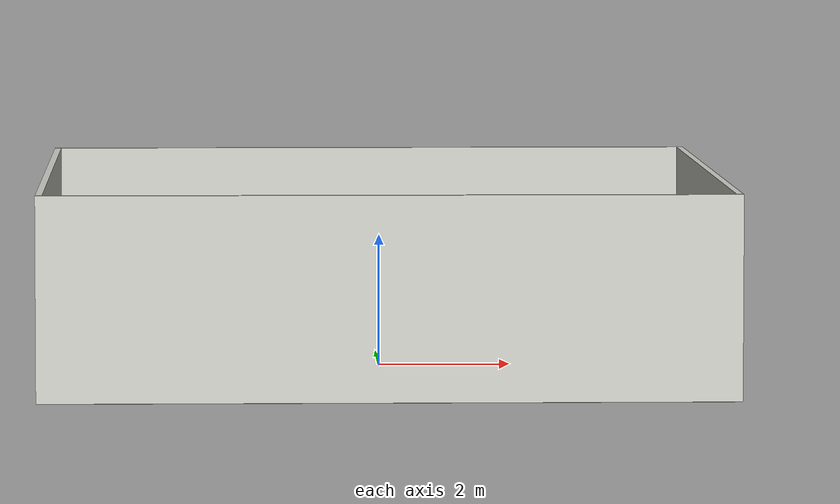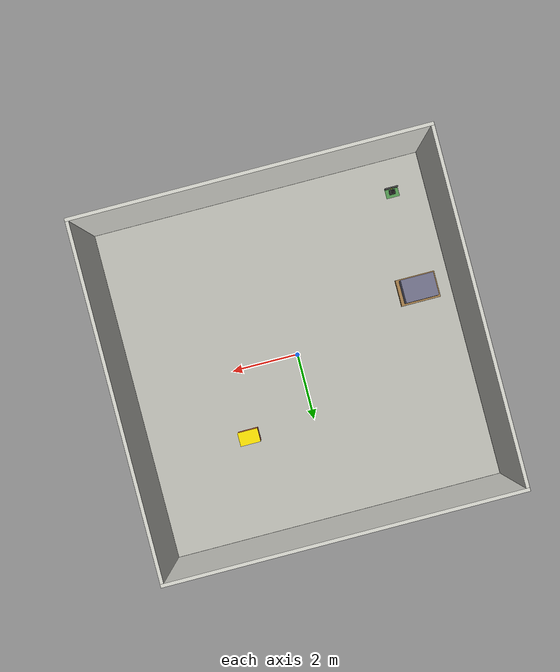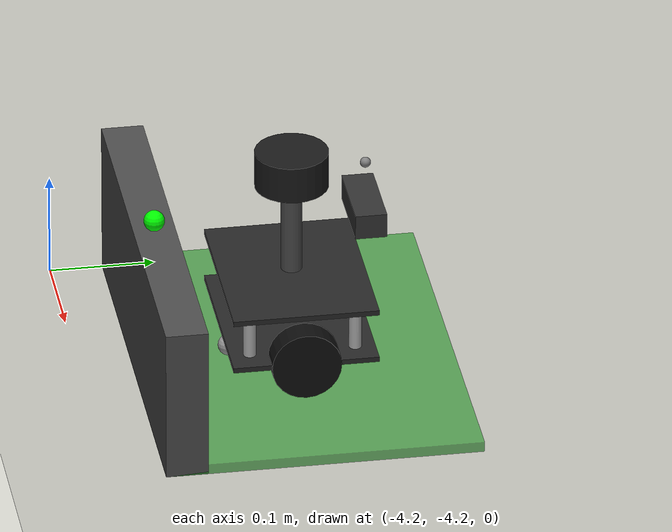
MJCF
<mujoco model="turtlebot_indoor_patrol">
    <compiler angle="degree" coordinate="local" inertiafromgeom="false"/>
    <option integrator="implicitfast" timestep="0.005" gravity="0 0 -9.81"/>

    <default>
        <joint damping="0.01" armature="0.001"/>
        <geom friction="1.0 0.005 0.0001" condim="3" contype="1" conaffinity="1"/>
    </default>

    <worldbody>
        <geom name="floor" type="plane" size="5 5 0.1"
              rgba="0.75 0.75 0.72 1" friction="1.0 0.005 0.0001"/>
        <light directional="true" diffuse=".8 .8 .8" specular=".3 .3 .3"
               pos="0 0 4" dir="0 0 -1"/>
        <!-- 보조 조명 (그림자 완화) -->
        <light directional="false" diffuse=".4 .4 .4" specular=".1 .1 .1"
               pos="3 3 3.5" dir="-0.3 -0.3 -1"/>
        <light directional="false" diffuse=".4 .4 .4" specular=".1 .1 .1"
               pos="-3 -3 3.5" dir="0.3 0.3 -1"/>

        <!-- ================================================================
             2. 실내 벽면 (10m x 10m, 벽 높이 3m, 벽 두께 0.1m)
             ================================================================ -->
        <geom name="wall_north" type="box" size="5.1 0.05 1.5"
              pos="0 5.05 1.5" rgba="0.85 0.85 0.82 1"/>
        <geom name="wall_south" type="box" size="5.1 0.05 1.5"
              pos="0 -5.05 1.5" rgba="0.85 0.85 0.82 1"/>
        <geom name="wall_east" type="box" size="0.05 5.0 1.5"
              pos="5.05 0 1.5" rgba="0.85 0.85 0.82 1"/>
        <geom name="wall_west" type="box" size="0.05 5.0 1.5"
              pos="-5.05 0 1.5" rgba="0.85 0.85 0.82 1"/>

        <body name="charging_station" pos="-4 -4 0">
            <!-- 충전 스테이션 베이스 (바닥 고정) -->
            <geom name="station_base" type="box"
                  size="0.2 0.15 0.005" pos="0 0 0.005"
                  rgba="0.2 0.6 0.2 0.7" mass="5.0"/>
            <!-- 충전 스테이션 본체 (후방 벽) -->
            <geom name="station_body" type="box"
                  size="0.2 0.02 0.075" pos="0 -0.13 0.075"
                  rgba="0.3 0.3 0.3 1" mass="2.0"/>
            <!-- 충전 단자 표시 -->
            <geom name="station_connector" type="box"
                  size="0.03 0.01 0.02" pos="0 -0.11 0.05"
                  rgba="1.0 0.8 0.0 1" contype="0" conaffinity="0"/>
            <!-- 상태 표시등 (초록색 = 대기 중) -->
            <geom name="station_led" type="sphere" size="0.01"
                  pos="0 -0.13 0.16" rgba="0.0 1.0 0.0 1"
                  contype="0" conaffinity="0"/>
            <site name="docking_port" pos="0 0 0.01" size="0.03"
                  rgba="0 1 0 0.3"/>
        </body>

        <!-- 장애물 1: 통로에 방치된 카고 박스 -->
        <body name="obstacle_cargo" pos="2 2 0">
            <geom name="obstacle_1_box" type="box"
                  size="0.3 0.2 0.25" pos="0 0 0.25"
                  rgba="0.75 0.35 0.2 1" mass="20.0"/>
            <!-- 경고 테이프 표시 (상단) -->
            <geom name="obstacle_1_tape" type="box"
                  size="0.305 0.205 0.005" pos="0 0 0.505"
                  rgba="1.0 0.9 0.0 1" contype="0" conaffinity="0"/>
        </body>

        <!-- 장애물 2: 팔레트 + 자재 적재 -->
        <body name="obstacle_pallet" pos="-4 -1 0">
            <!-- 목재 팔레트 (EUR 팔레트: 1200 x 800 x 144mm) -->
            <geom name="pallet_base" type="box"
                  size="0.6 0.4 0.072" pos="0 0 0.072"
                  rgba="0.65 0.50 0.30 1" mass="25.0"/>
            <!-- 팔레트 위 적재 상자 -->
            <geom name="pallet_cargo" type="box"
                  size="0.5 0.35 0.2" pos="0 0 0.344"
                  rgba="0.45 0.45 0.55 1" mass="15.0"/>
        </body>

        <body name="base_link" pos="-4 -4 0.043" quat="0.707107 0 0 0.707107">
            <freejoint name="root"/>
            <inertial pos="-0.02 0 0.005" mass="0.7"
                      diaginertia="0.0012 0.0012 0.0018"/>
            <!-- 하단 플레이트 (1층: 모터+배터리) -->
            <geom name="base_plate_lower" type="box"
                  size="0.069 0.089 0.0025" pos="0 0 0"
                  rgba="0.15 0.15 0.15 1"/>
            <!-- 상단 플레이트 (2층: SBC) -->
            <geom name="base_plate_upper" type="box"
                  size="0.069 0.089 0.0025" pos="0 0 0.05"
                  rgba="0.15 0.15 0.15 1"/>
            <!-- 4개 지지 기둥 -->
            <geom name="pillar_fl" type="cylinder" size="0.006 0.025"
                  pos="0.05 0.065 0.025" rgba="0.7 0.7 0.7 1"
                  contype="0" conaffinity="0"/>
            <geom name="pillar_fr" type="cylinder" size="0.006 0.025"
                  pos="0.05 -0.065 0.025" rgba="0.7 0.7 0.7 1"
                  contype="0" conaffinity="0"/>
            <geom name="pillar_rl" type="cylinder" size="0.006 0.025"
                  pos="-0.05 0.065 0.025" rgba="0.7 0.7 0.7 1"
                  contype="0" conaffinity="0"/>
            <geom name="pillar_rr" type="cylinder" size="0.006 0.025"
                  pos="-0.05 -0.065 0.025" rgba="0.7 0.7 0.7 1"
                  contype="0" conaffinity="0"/>

            <!-- 왼쪽 구동 바퀴 (DYNAMIXEL XL430-W250-T) -->
            <body name="wheel_left" pos="0 0.08 0" quat="0.707107 0.707107 0 0">
                <joint name="drive_left" type="hinge" axis="0 0 1"
                       damping="0.005" frictionloss="0.01"/>
                <inertial pos="0 0 0" mass="0.05"
                          diaginertia="0.00003 0.00003 0.00005"/>
                <geom name="wheel_left_geom" type="cylinder"
                      size="0.033 0.0125" rgba="0.05 0.05 0.05 1"
                      friction="1.5 0.005 0.0001"/>
            </body>

            <!-- 오른쪽 구동 바퀴 -->
            <body name="wheel_right" pos="0 -0.08 0" quat="0.707107 0.707107 0 0">
                <joint name="drive_right" type="hinge" axis="0 0 1"
                       damping="0.005" frictionloss="0.01"/>
                <inertial pos="0 0 0" mass="0.05"
                          diaginertia="0.00003 0.00003 0.00005"/>
                <geom name="wheel_right_geom" type="cylinder"
                      size="0.033 0.0125" rgba="0.05 0.05 0.05 1"
                      friction="1.5 0.005 0.0001"/>
            </body>

            <!-- 후방 볼 캐스터 (3점 지지) -->
            <body name="caster_ball" pos="-0.06 0 -0.023">
                <geom name="caster_geom" type="sphere" size="0.01"
                      rgba="0.6 0.6 0.6 1" friction="0.1 0.005 0.0001"
                      mass="0.02"/>
            </body>

            <!-- 센서 타워 -->
            <body name="sensor_tower" pos="0 0 0.055">
                <!-- LiDAR 마운트 기둥 -->
                <geom name="tower_post" type="cylinder"
                      size="0.01 0.0535" pos="0 0 0.0535"
                      rgba="0.3 0.3 0.3 1" contype="0" conaffinity="0" mass="0.05"/>

                <!-- LDS-01 LiDAR 센서 -->
                <body name="lidar_body" pos="0 0 0.107">
                    <inertial pos="0 0 0" mass="0.1"
                              diaginertia="0.00005 0.00005 0.00003"/>
                    <geom name="lidar_geom" type="cylinder"
                          size="0.035 0.018" rgba="0.1 0.1 0.1 1"
                          contype="0" conaffinity="0"/>
                    <site name="lidar_site" pos="0.07 0 0" quat="0.707 0 -0.707 0" size="0.005"/>
                </body>

                <!-- RGB-D 카메라 (전방) -->
                <body name="camera_body" pos="0.069 0 0.06">
                    <geom name="camera_geom" type="box"
                          size="0.015 0.04 0.012" rgba="0.2 0.2 0.2 1"
                          contype="0" conaffinity="0" mass="0.03"/>
                    <camera name="patrol_camera" pos="0 0 0"
                            fovy="58" quat="0.5 0.5 -0.5 0.5"/>
                    <site name="camera_site" pos="0 0 0" size="0.005"/>
                </body>

                <!-- IMU 센서 위치 -->
                <site name="imu_site" pos="0 0 0.01" size="0.005"/>
            </body>
        </body>
    </worldbody>

    <!-- ======== 액추에이터: DYNAMIXEL XL430-W250-T ======== -->
    <actuator>
        <velocity name="motor_left" joint="drive_left"
                  kv="5" forcerange="-1.4 1.4"
                  ctrlrange="-6.67 6.67"/>
        <velocity name="motor_right" joint="drive_right"
                  kv="5" forcerange="-1.4 1.4"
                  ctrlrange="-6.67 6.67"/>
    </actuator>

    <!-- ======== 센서 정의 ======== -->
    <sensor>
        <!-- LDS-01 LiDAR (360도, 범위 0.12~3.5m) -->
        <rangefinder name="lidar" site="lidar_site"/>
        <!-- IMU: 3축 가속도계 + 3축 자이로스코프 -->
        <accelerometer name="imu_accel" site="imu_site"/>
        <gyro name="imu_gyro" site="imu_site"/>
        <!-- 바퀴 인코더 -->
        <jointvel name="encoder_left" joint="drive_left"/>
        <jointvel name="encoder_right" joint="drive_right"/>
        <jointpos name="encoder_pos_left" joint="drive_left"/>
        <jointpos name="encoder_pos_right" joint="drive_right"/>
    </sensor>
</mujoco>
